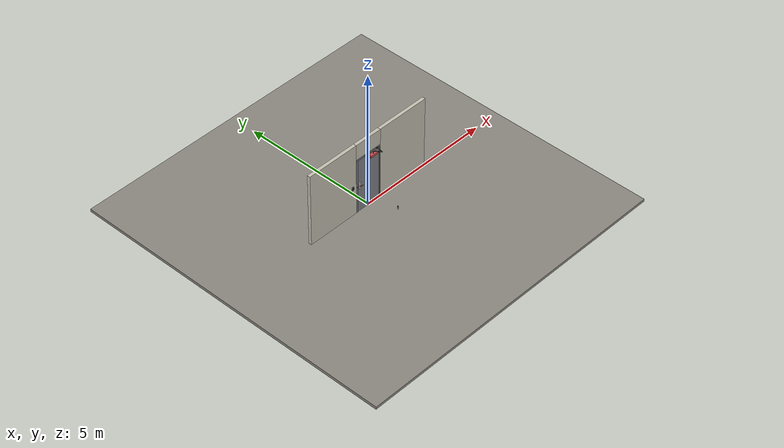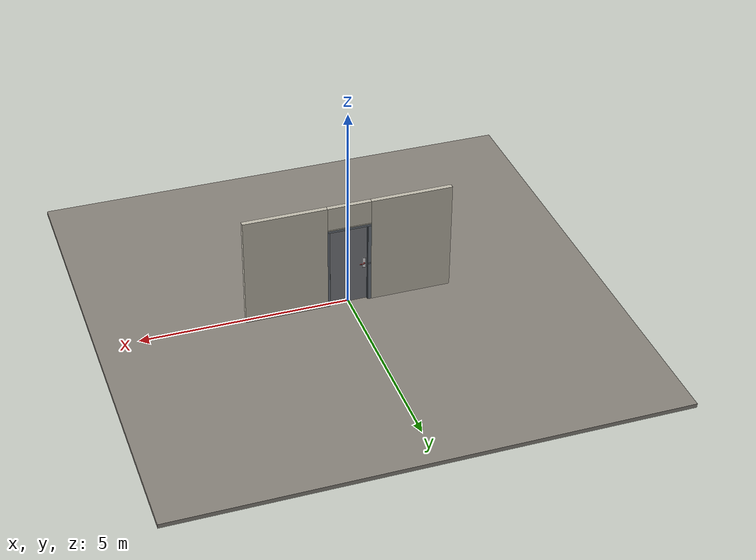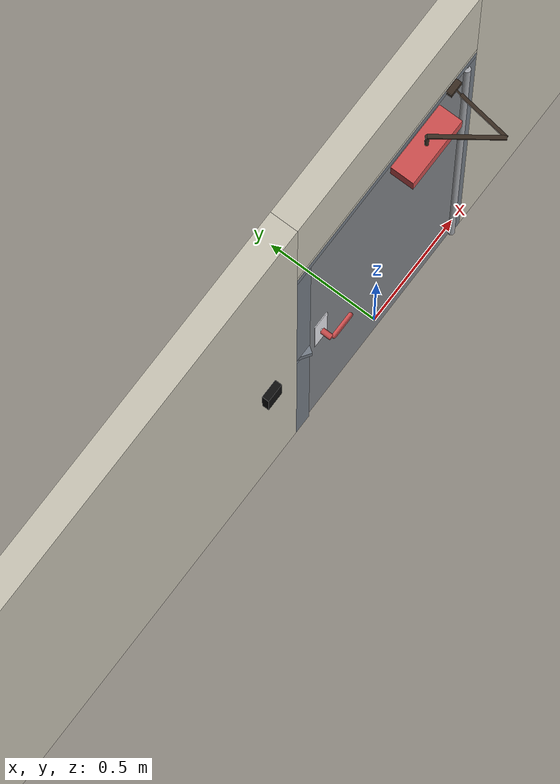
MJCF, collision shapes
<?xml version="1.0" ?>
<mujoco model="db0957_swing_single_full">
  <compiler angle="radian" meshdir="../../hardware" texturedir="../../textures" autolimits="true" inertiafromgeom="false"/>
  <option timestep="0.002" integrator="implicitfast" cone="elliptic" impratio="10" noslip_iterations="3">
    <flag multiccd="enable"/>
  </option>
  <size memory="16M"/>
  <default>
    <geom condim="4" solref="0.005 1" solimp="0.95 0.99 0.001"/>
    <joint solreflimit="0.005 1" solimplimit="0.95 0.99 0.001"/>
    <tendon solreflimit="0.005 1"/>
    <equality solref="0.002 1"/>
  </default>
  <visual>
    <headlight ambient="0.4 0.4 0.4" diffuse="0.7 0.7 0.7" specular="0.2 0.2 0.2"/>
    <quality shadowsize="4096"/>
    <map znear="0.01" zfar="60"/>
  </visual>
  <asset>
    <mesh name="card_reader_38c0bdb077" file="card_reader_38c0bdb077.obj"/>
    <mesh name="closer_body_fdc4667657" file="closer_body_fdc4667657.obj"/>
    <mesh name="lever_56c65af20a" file="lever_56c65af20a.obj"/>
    <material name="mat_floor" rgba="0.55 0.53 0.5 1" specular="0.2" shininess="0.15" reflectance="0"/>
    <material name="mat_wall" rgba="0.78 0.76 0.7 1" specular="0.2" shininess="0.1" reflectance="0"/>
    <material name="mat_leaf" rgba="0.5 0.51 0.53 1" specular="0.2" shininess="0.33" reflectance="0"/>
    <material name="mat_hinge" rgba="0.65 0.66 0.68 1" specular="0.74" shininess="0.5" reflectance="0.36"/>
    <material name="mat_op_chrome" rgba="0.9 0.9 0.92 1" specular="0.8" shininess="0.9" reflectance="0.4"/>
    <material name="mat_trim" rgba="0.85 0.66 0.3 1" specular="0.8" shininess="0.75" reflectance="0.4"/>
    <material name="mat_reader" rgba="0.05 0.05 0.05 1" specular="0.38" shininess="0.3" reflectance="0.12"/>
    <material name="mat_bolt" rgba="0.75 0.76 0.77 1" specular="0.8" shininess="0.65" reflectance="0.4"/>
    <material name="mat_frame" rgba="0.45 0.48 0.52 1" specular="0.32" shininess="0.6" reflectance="0.08"/>
    <material name="mat_closer" rgba="0.22 0.17 0.13 1" specular="0.8" shininess="0.6" reflectance="0.4"/>
    <material name="mat_wallreader" rgba="0.05 0.05 0.05 1" specular="0.38" shininess="0.3" reflectance="0.12"/>
    <material name="mat_bumper_stop" rgba="0.08 0.08 0.08 1" specular="0.2" shininess="0.1" reflectance="0"/>
    <material name="mat_stop_base" rgba="0.9 0.9 0.92 1" specular="0.8" shininess="0.9" reflectance="0.4"/>
    <texture name="skybox" type="skybox" builtin="gradient" rgb1="0.6 0.7 0.85" rgb2="0.9 0.92 0.95" width="256" height="256"/>
  </asset>
  <worldbody>
    <light name="sun" pos="1.5 -2.5 4" dir="-0.3 0.5 -0.8" directional="true" diffuse="0.8 0.8 0.8" specular="0.3 0.3 0.3" castshadow="true"/>
    <light name="fill" pos="-1.5 2.5 3" dir="0.3 -0.5 -0.7" directional="true" diffuse="0.35 0.35 0.4" castshadow="false"/>
    <camera name="robot_view" pos="0 -2.513687 1.734312" xyaxes="1 0 0 0 0.26963 0.962964" fovy="52"/>
    <camera name="far_view" pos="0 2.570688 1.734312" xyaxes="-1 0 0 0 -0.26963 0.962964" fovy="52"/>
    <camera name="iso" pos="-1.932062 -2.106937 2.141063" xyaxes="0.741536 -0.670913 0 0.242917 0.268487 0.932151" fovy="46"/>
    <camera name="detail_handle" pos="-0.1105 -0.877 1.296" xyaxes="0.97561 0.219512 0 -0.070934 0.315262 0.94635" fovy="38"/>
    <geom name="floor" type="box" size="6 6 0.05" pos="0 0 -0.05" material="mat_floor" group="0" contype="1" conaffinity="1" friction="0.8 0.005 0.0001" density="2400"/>
    <geom name="wall_left" type="box" size="0.97975 0.0575 1.35" pos="-1.52025 0.0285 1.35" material="mat_wall" group="0" contype="1" conaffinity="1" friction="0.6 0.005 0.0001" density="800"/>
    <geom name="wall_right" type="box" size="0.99475 0.0575 1.35" pos="1.50525 0.0285 1.35" material="mat_wall" group="0" contype="1" conaffinity="1" friction="0.6 0.005 0.0001" density="800"/>
    <geom name="wall_header" type="box" size="0.5255 0.0575 0.2875" pos="-0.015 0.0285 2.4125" material="mat_wall" group="0" contype="1" conaffinity="1" friction="0.6 0.005 0.0001" density="800"/>
    <geom name="jamb_hinge" type="box" size="0.025 0.0575 1.0225" pos="0.4855 0.0285 1.0225" material="mat_frame" group="0" contype="1" conaffinity="1" friction="0.6 0.005 0.0001" density="300"/>
    <geom name="strike_1016_wall_n" type="box" size="0.04 0.03825 0.018" pos="-0.5005 0.04775 1.016" material="mat_frame" group="0" contype="1" conaffinity="1" friction="0.6 0.005 0.0001" density="300"/>
    <geom name="strike_1016_wall_p" type="box" size="0.04 0.008 0.018" pos="-0.5005 -0.0175 1.016" material="mat_frame" group="0" contype="1" conaffinity="1" friction="0.6 0.005 0.0001" density="300"/>
    <geom name="strike_1016_ramp" type="box" size="0.04 0.018028 0.018" pos="-0.503782 -0.018312 1.016" quat="0.957092 0 0 -0.289784" material="mat_frame" group="0" contype="1" conaffinity="1" friction="0.12 0.005 0.0001" density="300"/>
    <geom name="strike_1016_back" type="box" size="0.0285 0.0095 0.018" pos="-0.512 0 1.016" material="mat_frame" group="0" contype="1" conaffinity="1" friction="0.6 0.005 0.0001" density="300"/>
    <geom name="jamb_strike_0" type="box" size="0.04 0.0575 0.499" pos="-0.5005 0.0285 0.499" material="mat_frame" group="0" contype="1" conaffinity="1" friction="0.6 0.005 0.0001" density="300"/>
    <geom name="jamb_strike_1" type="box" size="0.04 0.0575 0.5055" pos="-0.5005 0.0285 1.5395" material="mat_frame" group="0" contype="1" conaffinity="1" friction="0.6 0.005 0.0001" density="300"/>
    <geom name="jamb_head" type="box" size="0.5255 0.0575 0.025" pos="-0.015 0.0285 2.07" material="mat_frame" group="0" contype="1" conaffinity="1" friction="0.6 0.005 0.0001" density="300"/>
    <geom name="head_stud" type="box" size="0.5255 0.0575 0.015" pos="-0.015 0.0285 2.11" material="mat_wall" group="0" contype="1" conaffinity="1" friction="0.6 0.005 0.0001" density="500"/>
    <geom name="stop_hinge" type="box" size="0.0055 0.016 1.0225" pos="0.455 0.0385 1.0225" material="mat_frame" group="0" contype="1" conaffinity="1" friction="0.6 0.005 0.0001" density="300"/>
    <geom name="stop_strike" type="box" size="0.0055 0.016 1.0225" pos="-0.455 0.0385 1.0225" material="mat_frame" group="0" contype="1" conaffinity="1" friction="0.6 0.005 0.0001" density="300"/>
    <geom name="stop_head" type="box" size="0.4605 0.016 0.0055" pos="0 0.0385 2.0395" material="mat_frame" group="0" contype="1" conaffinity="1" friction="0.6 0.005 0.0001" density="300"/>
    <geom name="closer_bracket" type="box" size="0.03 0.012 0.014" pos="0.3605 -0.041 2.075" material="mat_closer" group="1" contype="0" conaffinity="0" density="2700"/>
    <geom name="wall_reader" type="box" size="0.04 0.015 0.06" pos="-0.7105 -0.044 1.1" material="mat_wallreader" group="0" contype="1" conaffinity="1" friction="0.6 0.005 0.0001" density="1000"/>
    <geom name="door_stop_base" type="cylinder" size="0.022 0.003" pos="0.4735 -0.8059 0.003" material="mat_stop_base" group="0" contype="1" conaffinity="1" friction="0.6 0.005 0.0001" density="7850"/>
    <geom name="door_stop_post" type="cylinder" size="0.012 0.0245" pos="0.4735 -0.8059 0.0305" material="mat_stop_base" group="0" contype="1" conaffinity="1" friction="0.6 0.005 0.0001" density="7850"/>
    <geom name="door_stop_bumper" type="cylinder" size="0.022 0.02" pos="0.4735 -0.8059 0.075" material="mat_bumper_stop" group="0" contype="1" conaffinity="1" friction="0.6 0.005 0.0001" density="1100"/>
    <site name="approach_point" pos="0 -1.5 0" quat="1 0 0 0" size="0.05" rgba="0.2 0.9 0.2 0.5" group="4"/>
    <site name="goal_point" pos="0 1.5 0" quat="1 0 0 0" size="0.05" rgba="0.2 0.9 0.2 0.5" group="4"/>
    <site name="door_plane_center" pos="0 0 1.0225" quat="1 0 0 0" size="0.02" rgba="0.2 0.9 0.2 0.5" group="4"/>
    <body name="leaf" pos="0.4605 0 0">
      <inertial pos="-0.413884 -0.016184 1.214375" mass="62.250425" quat="0.515761 -0.51411 -0.472605 -0.496312" diaginertia="4.165237237 25.506106152 29.569012299"/>
      <joint name="leaf_hinge" type="hinge" axis="0 0 1" pos="-0.003 -0.029 0" limited="true" range="0 1.570796" damping="12.25611" frictionloss="1.596547" stiffness="12.694198" springref="-2.580707" armature="0.02"/>
      <geom name="leaf_slab" type="box" size="0.457 0.022 1.016" pos="-0.46 0 1.025" material="mat_leaf" group="0" contype="1" conaffinity="1" friction="0.4 0.005 0.0001" density="1"/>
      <geom name="hinge_continuous" type="cylinder" size="0.0136 1.006" pos="-0.003 -0.029 1.025" material="mat_hinge" group="1" contype="0" conaffinity="0" density="2700"/>
      <geom name="leaf_handle_escutcheon_n" type="box" size="0.0375 0.0015 0.13" pos="-0.847 -0.0235 1.016" material="mat_op_chrome" group="1" contype="0" conaffinity="0" density="3000"/>
      <geom name="leaf_handle_escutcheon_p" type="box" size="0.0375 0.0015 0.13" pos="-0.847 0.0235 1.016" material="mat_op_chrome" group="1" contype="0" conaffinity="0" density="3000"/>
      <geom name="leaf_handle_reader" type="mesh" mesh="card_reader_38c0bdb077" pos="-0.847 -0.022 1.176" quat="0.707107 0.707107 0 0" material="mat_reader" group="1" contype="0" conaffinity="0" density="2000"/>
      <geom name="leaf_latch_bolt_faceplate" type="box" size="0.0006 0.014 0.028" pos="-0.9164 0 1.016" material="mat_bolt" group="1" contype="0" conaffinity="0" density="8500"/>
      <geom name="closer_body" type="mesh" mesh="closer_body_fdc4667657" pos="-0.3 -0.022 1.952" quat="0 0 -0.707107 0.707107" material="mat_closer" group="1" contype="0" conaffinity="0" density="2000"/>
      <geom name="closer_body_col" type="box" size="0.145 0.05 0.035" pos="-0.3 -0.072 1.952" material="mat_closer" group="3" contype="1" conaffinity="1" rgba="0.8 0.3 0.3 0.25" friction="0.6 0.005 0.0001" density="2000"/>
      <geom name="closer_pinion_shaft" type="cylinder" size="0.008 0.0615" pos="-0.3 -0.072 2.0135" material="mat_closer" group="1" contype="0" conaffinity="0" density="2700"/>
      <site name="leaf_edge_mid" pos="-0.917 0 1.016" quat="1 0 0 0" size="0.02" rgba="0.2 0.9 0.2 0.5" group="4"/>
      <body name="leaf_handle" pos="-0.847 0 1.016">
        <inertial pos="0.034904 0 0" mass="0.739068" quat="0.707107 0 0 -0.707107" diaginertia="0.001260094 0.003272501 0.004494637"/>
        <joint name="leaf_handle_hinge" type="hinge" axis="0 1 0" limited="true" range="0 0.87" damping="0.231314" frictionloss="0.06" stiffness="1.1" springref="-0.454545" armature="0.01"/>
        <geom name="leaf_handle_spindle" type="cylinder" size="0.006 0.034" pos="0 0 0" quat="0.707107 -0.707107 0 0" material="mat_op_chrome" group="1" contype="0" conaffinity="0" density="7850"/>
        <geom name="leaf_handle_lever_n" type="mesh" mesh="lever_56c65af20a" pos="0 -0.022 0" quat="0 0 -0.707107 0.707107" material="mat_op_chrome" group="1" contype="0" conaffinity="0" density="3000"/>
        <geom name="leaf_handle_lever_col_n" type="capsule" size="0.0095 0.0505" pos="0.06 -0.077 0" quat="0.707107 0 0.707107 0" material="mat_op_chrome" group="3" contype="1" conaffinity="1" rgba="0.8 0.3 0.3 0.25" friction="0.7 0.01 0.0001" density="3000"/>
        <geom name="leaf_handle_hub_col_n" type="cylinder" size="0.012 0.022" pos="0 -0.052 0" quat="0.707107 -0.707107 0 0" material="mat_op_chrome" group="3" contype="1" conaffinity="1" rgba="0.8 0.3 0.3 0.25" friction="0.6 0.005 0.0001" density="3000"/>
        <geom name="leaf_handle_lever_p" type="mesh" mesh="lever_56c65af20a" pos="0 0.022 0" quat="0 0 0.707107 0.707107" material="mat_op_chrome" group="1" contype="0" conaffinity="0" density="3000"/>
        <geom name="leaf_handle_lever_col_p" type="capsule" size="0.0095 0.0505" pos="0.06 0.077 0" quat="0.707107 0 0.707107 0" material="mat_op_chrome" group="3" contype="1" conaffinity="1" rgba="0.8 0.3 0.3 0.25" friction="0.7 0.01 0.0001" density="3000"/>
        <geom name="leaf_handle_hub_col_p" type="cylinder" size="0.012 0.022" pos="0 0.052 0" quat="0.707107 -0.707107 0 0" material="mat_op_chrome" group="3" contype="1" conaffinity="1" rgba="0.8 0.3 0.3 0.25" friction="0.6 0.005 0.0001" density="3000"/>
        <site name="leaf_handle_grip_n" pos="0.096 -0.077 0" quat="1 0 0 0" size="0.012" rgba="0.2 0.9 0.2 0.5" group="4"/>
        <site name="leaf_handle_grip_p" pos="0.096 0.077 0" quat="1 0 0 0" size="0.012" rgba="0.2 0.9 0.2 0.5" group="4"/>
      </body>
      <body name="leaf_latch_bolt" pos="-0.917 0 1.016">
        <inertial pos="0.0055 0 0" mass="0.074627" quat="0.92388 0.382683 0 0" diaginertia="0.000002271 0.000013255 0.000013255"/>
        <joint name="leaf_latch_bolt_slide" type="slide" axis="1 0 0" limited="true" range="0 0.019" damping="2" frictionloss="0.3" stiffness="550" springref="-0.01" armature="0.1"/>
        <geom name="leaf_latch_bolt_capsule" type="capsule" size="0.008 0.0165" pos="0.0055 0 0" quat="0.707107 0 -0.707107 0" material="mat_bolt" group="0" contype="1" conaffinity="1" friction="0.2 0.005 0.0001" density="8500"/>
      </body>
      <body name="closer_arm_main" pos="-0.3 -0.072 2.075" quat="0.890947 0 0 -0.454107">
        <inertial pos="0.14 0 0" mass="0.12096" quat="1 0 0 0" diaginertia="0.000003588 0.00079128 0.000792852"/>
        <joint name="closer_pinion" type="hinge" axis="0 0 1" limited="false" damping="0.01" armature="0.002"/>
        <geom name="closer_arm_main_geom" type="box" size="0.14 0.008 0.005" pos="0.14 0 0" material="mat_closer" group="1" contype="0" conaffinity="0" density="2700"/>
        <body name="closer_arm_fore" pos="0.28 0 0" quat="0.373215 0 0 0.927745">
          <inertial pos="0.128088 0 0" mass="0.076531" quat="1 0 0 0" diaginertia="0.000001771 0.000437665 0.000438201"/>
          <joint name="closer_elbow" type="hinge" axis="0 0 1" limited="false" damping="0.01" armature="0.002"/>
          <geom name="closer_arm_fore_geom" type="box" size="0.1125 0.007 0.004" pos="0.1125 0 0" material="mat_closer" group="1" contype="0" conaffinity="0" density="2700"/>
          <geom name="closer_fore_neck" type="box" size="0.0175 0.003 0.003" pos="0.2425 0 0" material="mat_closer" group="1" contype="0" conaffinity="0" density="2700"/>
          <geom name="closer_fore_pivot" type="cylinder" size="0.005 0.012" pos="0.26 0 0" material="mat_closer" group="1" contype="0" conaffinity="0" density="2700"/>
        </body>
      </body>
    </body>
  </worldbody>
  <tendon>
    <fixed name="leaf_latch_bolt_coupling" limited="true" range="0 10">
      <joint joint="leaf_latch_bolt_slide" coef="1"/>
      <joint joint="leaf_handle_hinge" coef="-0.023457"/>
    </fixed>
  </tendon>
  <equality>
    <connect name="closer_arm_connect" body1="closer_arm_fore" body2="world" anchor="0.26 0 0" active="true"/>
  </equality>
  <contact>
    <exclude body1="closer_arm_main" body2="leaf"/>
    <exclude body1="closer_arm_fore" body2="leaf"/>
    <exclude body1="closer_arm_main" body2="closer_arm_fore"/>
  </contact>
  <sensor>
    <jointpos name="leaf_hinge_pos" joint="leaf_hinge"/>
    <jointvel name="leaf_hinge_vel" joint="leaf_hinge"/>
    <jointpos name="leaf_handle_hinge_pos" joint="leaf_handle_hinge"/>
    <jointvel name="leaf_handle_hinge_vel" joint="leaf_handle_hinge"/>
    <jointpos name="leaf_latch_bolt_slide_pos" joint="leaf_latch_bolt_slide"/>
    <jointvel name="leaf_latch_bolt_slide_vel" joint="leaf_latch_bolt_slide"/>
  </sensor>
</mujoco>
